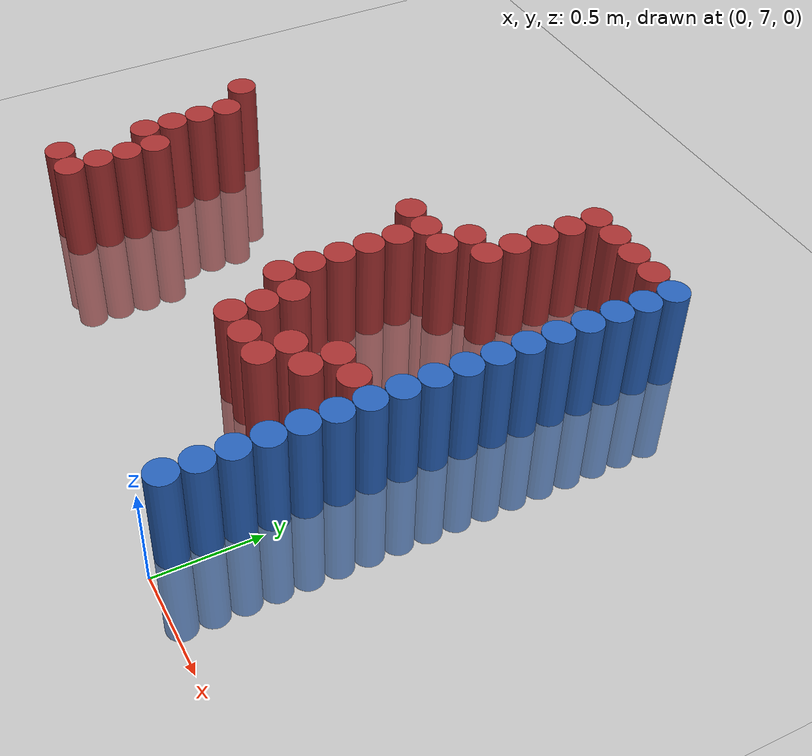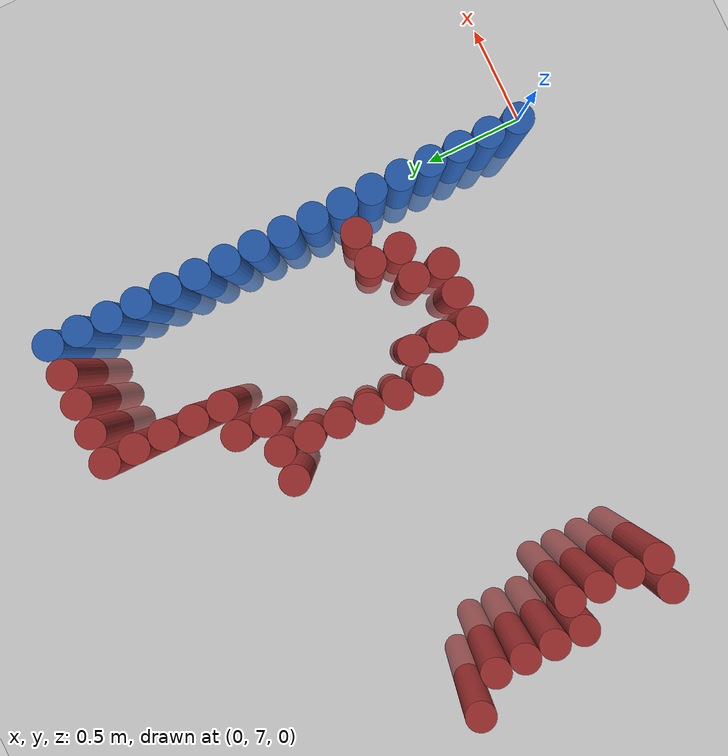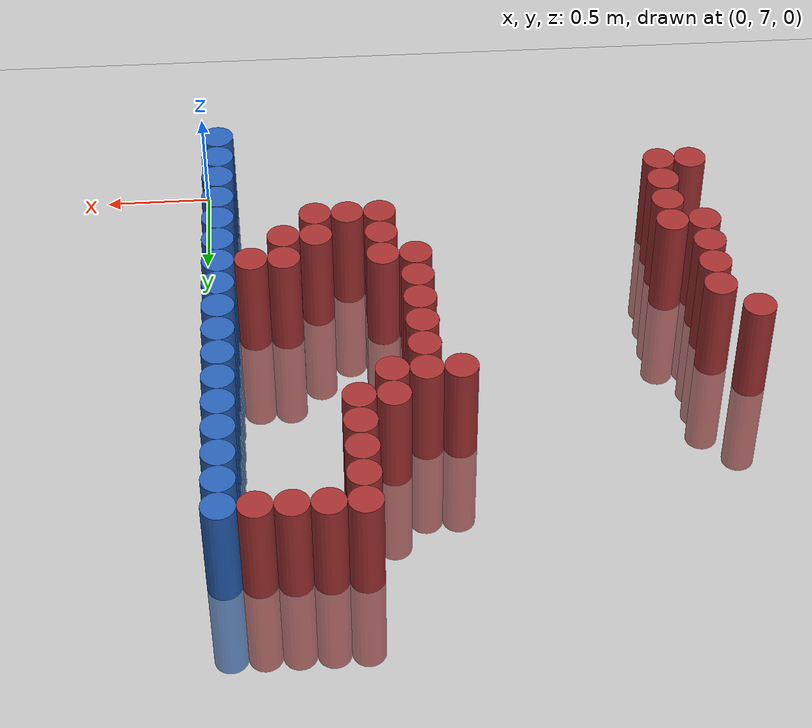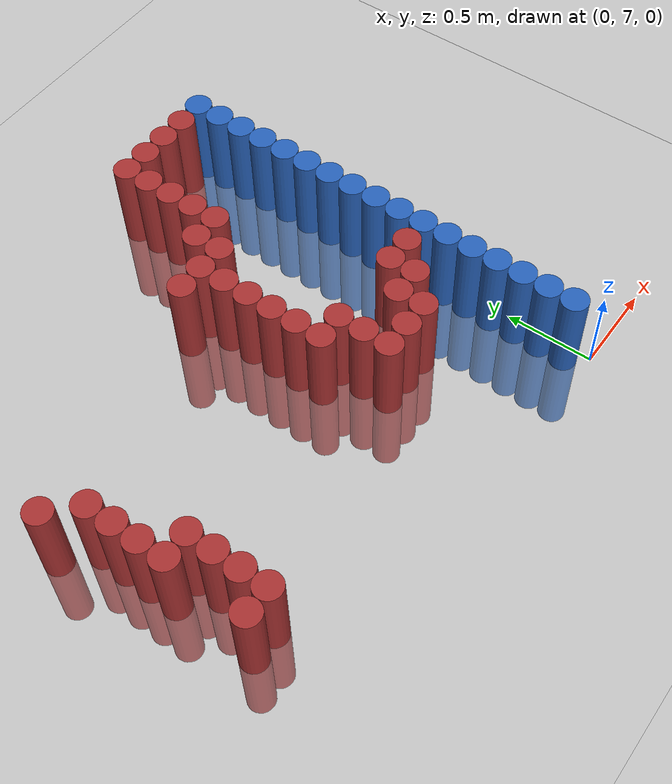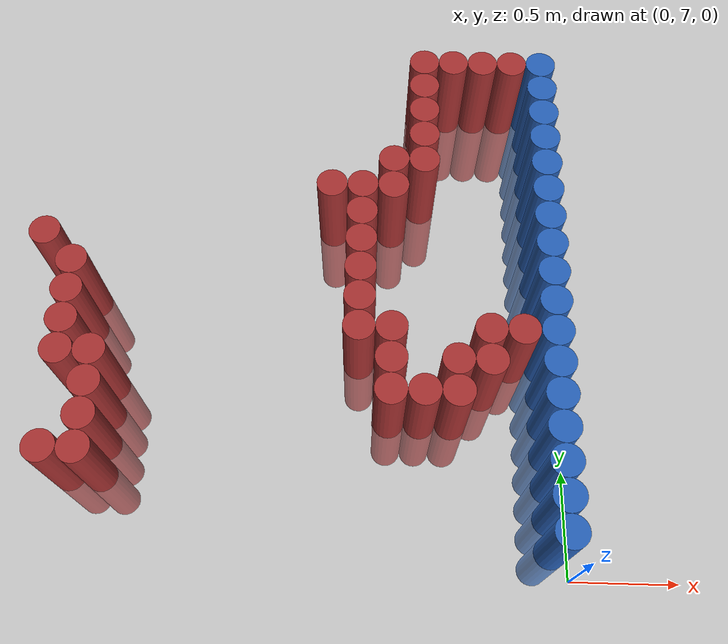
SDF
<sdf version="1.6">
 <world name="default">
  <model name="ground_plane">
   <static>1</static>
   <link name="link">
    <collision name="collision">
     <geometry><plane><normal>0 0 1</normal><size>100 100</size></plane></geometry>
     <surface><friction><ode><mu>100</mu><mu2>50</mu2></ode></friction></surface>
    </collision>
    <visual name="visual">
     <cast_shadows>0</cast_shadows>
     <geometry><plane><normal>0 0 1</normal><size>100 100</size></plane></geometry>
     <material>
      <script><uri>file://media/materials/scripts/gazebo.material</uri><name>Gazebo/Grey</name></script>
     </material>
    </visual>
   </link>
  </model>
  <model name="unit_cylinder_190">
   <static>1</static>
   <pose>-2.475000 8.475000 0.000000 0.000000 0.000000 0.000000</pose>
   <link name="link">
    <inertial>
     <mass>1</mass>
     <inertia><ixx>0.145833</ixx><ixy>0</ixy><ixz>0</ixz><iyy>0.145833</iyy><iyz>0</iyz><izz>0.125</izz></inertia>
    </inertial>
    <collision name="collision">
     <geometry><cylinder><radius>0.075000</radius><length>1</length></cylinder></geometry>
    </collision>
    <visual name="visual">
     <geometry><cylinder><radius>0.075000</radius><length>1</length></cylinder></geometry>
     <material>
      <ambient>0.648000 0.192000 0.192000 1</ambient>
      <diffuse>0.648000 0.192000 0.192000 1</diffuse>
     </material>
     <material>
      <script><name>Gazebo/Grey</name><uri>file://media/materials/scripts/gazebo.material</uri></script>
     </material>
    </visual>
   </link>
  </model>
  <model name="unit_cylinder_191">
   <static>1</static>
   <pose>-2.325000 7.425000 0.000000 0.000000 0.000000 0.000000</pose>
   <link name="link">
    <inertial>
     <mass>1</mass>
     <inertia><ixx>0.145833</ixx><ixy>0</ixy><ixz>0</ixz><iyy>0.145833</iyy><iyz>0</iyz><izz>0.125</izz></inertia>
    </inertial>
    <collision name="collision">
     <geometry><cylinder><radius>0.075000</radius><length>1</length></cylinder></geometry>
    </collision>
    <visual name="visual">
     <geometry><cylinder><radius>0.075000</radius><length>1</length></cylinder></geometry>
     <material>
      <ambient>0.648000 0.192000 0.192000 1</ambient>
      <diffuse>0.648000 0.192000 0.192000 1</diffuse>
     </material>
     <material>
      <script><name>Gazebo/Grey</name><uri>file://media/materials/scripts/gazebo.material</uri></script>
     </material>
    </visual>
   </link>
  </model>
  <model name="unit_cylinder_192">
   <static>1</static>
   <pose>-2.325000 7.875000 0.000000 0.000000 0.000000 0.000000</pose>
   <link name="link">
    <inertial>
     <mass>1</mass>
     <inertia><ixx>0.145833</ixx><ixy>0</ixy><ixz>0</ixz><iyy>0.145833</iyy><iyz>0</iyz><izz>0.125</izz></inertia>
    </inertial>
    <collision name="collision">
     <geometry><cylinder><radius>0.075000</radius><length>1</length></cylinder></geometry>
    </collision>
    <visual name="visual">
     <geometry><cylinder><radius>0.075000</radius><length>1</length></cylinder></geometry>
     <material>
      <ambient>0.648000 0.192000 0.192000 1</ambient>
      <diffuse>0.648000 0.192000 0.192000 1</diffuse>
     </material>
     <material>
      <script><name>Gazebo/Grey</name><uri>file://media/materials/scripts/gazebo.material</uri></script>
     </material>
    </visual>
   </link>
  </model>
  <model name="unit_cylinder_193">
   <static>1</static>
   <pose>-2.325000 8.025000 0.000000 0.000000 0.000000 0.000000</pose>
   <link name="link">
    <inertial>
     <mass>1</mass>
     <inertia><ixx>0.145833</ixx><ixy>0</ixy><ixz>0</ixz><iyy>0.145833</iyy><iyz>0</iyz><izz>0.125</izz></inertia>
    </inertial>
    <collision name="collision">
     <geometry><cylinder><radius>0.075000</radius><length>1</length></cylinder></geometry>
    </collision>
    <visual name="visual">
     <geometry><cylinder><radius>0.075000</radius><length>1</length></cylinder></geometry>
     <material>
      <ambient>0.648000 0.192000 0.192000 1</ambient>
      <diffuse>0.648000 0.192000 0.192000 1</diffuse>
     </material>
     <material>
      <script><name>Gazebo/Grey</name><uri>file://media/materials/scripts/gazebo.material</uri></script>
     </material>
    </visual>
   </link>
  </model>
  <model name="unit_cylinder_194">
   <static>1</static>
   <pose>-2.325000 8.175000 0.000000 0.000000 0.000000 0.000000</pose>
   <link name="link">
    <inertial>
     <mass>1</mass>
     <inertia><ixx>0.145833</ixx><ixy>0</ixy><ixz>0</ixz><iyy>0.145833</iyy><iyz>0</iyz><izz>0.125</izz></inertia>
    </inertial>
    <collision name="collision">
     <geometry><cylinder><radius>0.075000</radius><length>1</length></cylinder></geometry>
    </collision>
    <visual name="visual">
     <geometry><cylinder><radius>0.075000</radius><length>1</length></cylinder></geometry>
     <material>
      <ambient>0.648000 0.192000 0.192000 1</ambient>
      <diffuse>0.648000 0.192000 0.192000 1</diffuse>
     </material>
     <material>
      <script><name>Gazebo/Grey</name><uri>file://media/materials/scripts/gazebo.material</uri></script>
     </material>
    </visual>
   </link>
  </model>
  <model name="unit_cylinder_195">
   <static>1</static>
   <pose>-2.325000 8.325000 0.000000 0.000000 0.000000 0.000000</pose>
   <link name="link">
    <inertial>
     <mass>1</mass>
     <inertia><ixx>0.145833</ixx><ixy>0</ixy><ixz>0</ixz><iyy>0.145833</iyy><iyz>0</iyz><izz>0.125</izz></inertia>
    </inertial>
    <collision name="collision">
     <geometry><cylinder><radius>0.075000</radius><length>1</length></cylinder></geometry>
    </collision>
    <visual name="visual">
     <geometry><cylinder><radius>0.075000</radius><length>1</length></cylinder></geometry>
     <material>
      <ambient>0.648000 0.192000 0.192000 1</ambient>
      <diffuse>0.648000 0.192000 0.192000 1</diffuse>
     </material>
     <material>
      <script><name>Gazebo/Grey</name><uri>file://media/materials/scripts/gazebo.material</uri></script>
     </material>
    </visual>
   </link>
  </model>
  <model name="unit_cylinder_196">
   <static>1</static>
   <pose>-2.175000 7.425000 0.000000 0.000000 0.000000 0.000000</pose>
   <link name="link">
    <inertial>
     <mass>1</mass>
     <inertia><ixx>0.145833</ixx><ixy>0</ixy><ixz>0</ixz><iyy>0.145833</iyy><iyz>0</iyz><izz>0.125</izz></inertia>
    </inertial>
    <collision name="collision">
     <geometry><cylinder><radius>0.075000</radius><length>1</length></cylinder></geometry>
    </collision>
    <visual name="visual">
     <geometry><cylinder><radius>0.075000</radius><length>1</length></cylinder></geometry>
     <material>
      <ambient>0.648000 0.192000 0.192000 1</ambient>
      <diffuse>0.648000 0.192000 0.192000 1</diffuse>
     </material>
     <material>
      <script><name>Gazebo/Grey</name><uri>file://media/materials/scripts/gazebo.material</uri></script>
     </material>
    </visual>
   </link>
  </model>
  <model name="unit_cylinder_197">
   <static>1</static>
   <pose>-2.175000 7.575000 0.000000 0.000000 0.000000 0.000000</pose>
   <link name="link">
    <inertial>
     <mass>1</mass>
     <inertia><ixx>0.145833</ixx><ixy>0</ixy><ixz>0</ixz><iyy>0.145833</iyy><iyz>0</iyz><izz>0.125</izz></inertia>
    </inertial>
    <collision name="collision">
     <geometry><cylinder><radius>0.075000</radius><length>1</length></cylinder></geometry>
    </collision>
    <visual name="visual">
     <geometry><cylinder><radius>0.075000</radius><length>1</length></cylinder></geometry>
     <material>
      <ambient>0.648000 0.192000 0.192000 1</ambient>
      <diffuse>0.648000 0.192000 0.192000 1</diffuse>
     </material>
     <material>
      <script><name>Gazebo/Grey</name><uri>file://media/materials/scripts/gazebo.material</uri></script>
     </material>
    </visual>
   </link>
  </model>
  <model name="unit_cylinder_198">
   <static>1</static>
   <pose>-2.175000 7.725000 0.000000 0.000000 0.000000 0.000000</pose>
   <link name="link">
    <inertial>
     <mass>1</mass>
     <inertia><ixx>0.145833</ixx><ixy>0</ixy><ixz>0</ixz><iyy>0.145833</iyy><iyz>0</iyz><izz>0.125</izz></inertia>
    </inertial>
    <collision name="collision">
     <geometry><cylinder><radius>0.075000</radius><length>1</length></cylinder></geometry>
    </collision>
    <visual name="visual">
     <geometry><cylinder><radius>0.075000</radius><length>1</length></cylinder></geometry>
     <material>
      <ambient>0.648000 0.192000 0.192000 1</ambient>
      <diffuse>0.648000 0.192000 0.192000 1</diffuse>
     </material>
     <material>
      <script><name>Gazebo/Grey</name><uri>file://media/materials/scripts/gazebo.material</uri></script>
     </material>
    </visual>
   </link>
  </model>
  <model name="unit_cylinder_199">
   <static>1</static>
   <pose>-2.175000 7.875000 0.000000 0.000000 0.000000 0.000000</pose>
   <link name="link">
    <inertial>
     <mass>1</mass>
     <inertia><ixx>0.145833</ixx><ixy>0</ixy><ixz>0</ixz><iyy>0.145833</iyy><iyz>0</iyz><izz>0.125</izz></inertia>
    </inertial>
    <collision name="collision">
     <geometry><cylinder><radius>0.075000</radius><length>1</length></cylinder></geometry>
    </collision>
    <visual name="visual">
     <geometry><cylinder><radius>0.075000</radius><length>1</length></cylinder></geometry>
     <material>
      <ambient>0.648000 0.192000 0.192000 1</ambient>
      <diffuse>0.648000 0.192000 0.192000 1</diffuse>
     </material>
     <material>
      <script><name>Gazebo/Grey</name><uri>file://media/materials/scripts/gazebo.material</uri></script>
     </material>
    </visual>
   </link>
  </model>
  <model name="unit_cylinder_200">
   <static>1</static>
   <pose>-1.125000 8.775000 0.000000 0.000000 0.000000 0.000000</pose>
   <link name="link">
    <inertial>
     <mass>1</mass>
     <inertia><ixx>0.145833</ixx><ixy>0</ixy><ixz>0</ixz><iyy>0.145833</iyy><iyz>0</iyz><izz>0.125</izz></inertia>
    </inertial>
    <collision name="collision">
     <geometry><cylinder><radius>0.075000</radius><length>1</length></cylinder></geometry>
    </collision>
    <visual name="visual">
     <geometry><cylinder><radius>0.075000</radius><length>1</length></cylinder></geometry>
     <material>
      <ambient>0.648000 0.192000 0.192000 1</ambient>
      <diffuse>0.648000 0.192000 0.192000 1</diffuse>
     </material>
     <material>
      <script><name>Gazebo/Grey</name><uri>file://media/materials/scripts/gazebo.material</uri></script>
     </material>
    </visual>
   </link>
  </model>
  <model name="unit_cylinder_201">
   <static>1</static>
   <pose>-0.975000 8.025000 0.000000 0.000000 0.000000 0.000000</pose>
   <link name="link">
    <inertial>
     <mass>1</mass>
     <inertia><ixx>0.145833</ixx><ixy>0</ixy><ixz>0</ixz><iyy>0.145833</iyy><iyz>0</iyz><izz>0.125</izz></inertia>
    </inertial>
    <collision name="collision">
     <geometry><cylinder><radius>0.075000</radius><length>1</length></cylinder></geometry>
    </collision>
    <visual name="visual">
     <geometry><cylinder><radius>0.075000</radius><length>1</length></cylinder></geometry>
     <material>
      <ambient>0.648000 0.192000 0.192000 1</ambient>
      <diffuse>0.648000 0.192000 0.192000 1</diffuse>
     </material>
     <material>
      <script><name>Gazebo/Grey</name><uri>file://media/materials/scripts/gazebo.material</uri></script>
     </material>
    </visual>
   </link>
  </model>
  <model name="unit_cylinder_202">
   <static>1</static>
   <pose>-0.975000 8.175000 0.000000 0.000000 0.000000 0.000000</pose>
   <link name="link">
    <inertial>
     <mass>1</mass>
     <inertia><ixx>0.145833</ixx><ixy>0</ixy><ixz>0</ixz><iyy>0.145833</iyy><iyz>0</iyz><izz>0.125</izz></inertia>
    </inertial>
    <collision name="collision">
     <geometry><cylinder><radius>0.075000</radius><length>1</length></cylinder></geometry>
    </collision>
    <visual name="visual">
     <geometry><cylinder><radius>0.075000</radius><length>1</length></cylinder></geometry>
     <material>
      <ambient>0.648000 0.192000 0.192000 1</ambient>
      <diffuse>0.648000 0.192000 0.192000 1</diffuse>
     </material>
     <material>
      <script><name>Gazebo/Grey</name><uri>file://media/materials/scripts/gazebo.material</uri></script>
     </material>
    </visual>
   </link>
  </model>
  <model name="unit_cylinder_203">
   <static>1</static>
   <pose>-0.975000 8.325000 0.000000 0.000000 0.000000 0.000000</pose>
   <link name="link">
    <inertial>
     <mass>1</mass>
     <inertia><ixx>0.145833</ixx><ixy>0</ixy><ixz>0</ixz><iyy>0.145833</iyy><iyz>0</iyz><izz>0.125</izz></inertia>
    </inertial>
    <collision name="collision">
     <geometry><cylinder><radius>0.075000</radius><length>1</length></cylinder></geometry>
    </collision>
    <visual name="visual">
     <geometry><cylinder><radius>0.075000</radius><length>1</length></cylinder></geometry>
     <material>
      <ambient>0.648000 0.192000 0.192000 1</ambient>
      <diffuse>0.648000 0.192000 0.192000 1</diffuse>
     </material>
     <material>
      <script><name>Gazebo/Grey</name><uri>file://media/materials/scripts/gazebo.material</uri></script>
     </material>
    </visual>
   </link>
  </model>
  <model name="unit_cylinder_204">
   <static>1</static>
   <pose>-0.975000 8.475000 0.000000 0.000000 0.000000 0.000000</pose>
   <link name="link">
    <inertial>
     <mass>1</mass>
     <inertia><ixx>0.145833</ixx><ixy>0</ixy><ixz>0</ixz><iyy>0.145833</iyy><iyz>0</iyz><izz>0.125</izz></inertia>
    </inertial>
    <collision name="collision">
     <geometry><cylinder><radius>0.075000</radius><length>1</length></cylinder></geometry>
    </collision>
    <visual name="visual">
     <geometry><cylinder><radius>0.075000</radius><length>1</length></cylinder></geometry>
     <material>
      <ambient>0.648000 0.192000 0.192000 1</ambient>
      <diffuse>0.648000 0.192000 0.192000 1</diffuse>
     </material>
     <material>
      <script><name>Gazebo/Grey</name><uri>file://media/materials/scripts/gazebo.material</uri></script>
     </material>
    </visual>
   </link>
  </model>
  <model name="unit_cylinder_205">
   <static>1</static>
   <pose>-0.975000 8.625000 0.000000 0.000000 0.000000 0.000000</pose>
   <link name="link">
    <inertial>
     <mass>1</mass>
     <inertia><ixx>0.145833</ixx><ixy>0</ixy><ixz>0</ixz><iyy>0.145833</iyy><iyz>0</iyz><izz>0.125</izz></inertia>
    </inertial>
    <collision name="collision">
     <geometry><cylinder><radius>0.075000</radius><length>1</length></cylinder></geometry>
    </collision>
    <visual name="visual">
     <geometry><cylinder><radius>0.075000</radius><length>1</length></cylinder></geometry>
     <material>
      <ambient>0.648000 0.192000 0.192000 1</ambient>
      <diffuse>0.648000 0.192000 0.192000 1</diffuse>
     </material>
     <material>
      <script><name>Gazebo/Grey</name><uri>file://media/materials/scripts/gazebo.material</uri></script>
     </material>
    </visual>
   </link>
  </model>
  <model name="unit_cylinder_206">
   <static>1</static>
   <pose>-0.975000 8.775000 0.000000 0.000000 0.000000 0.000000</pose>
   <link name="link">
    <inertial>
     <mass>1</mass>
     <inertia><ixx>0.145833</ixx><ixy>0</ixy><ixz>0</ixz><iyy>0.145833</iyy><iyz>0</iyz><izz>0.125</izz></inertia>
    </inertial>
    <collision name="collision">
     <geometry><cylinder><radius>0.075000</radius><length>1</length></cylinder></geometry>
    </collision>
    <visual name="visual">
     <geometry><cylinder><radius>0.075000</radius><length>1</length></cylinder></geometry>
     <material>
      <ambient>0.648000 0.192000 0.192000 1</ambient>
      <diffuse>0.648000 0.192000 0.192000 1</diffuse>
     </material>
     <material>
      <script><name>Gazebo/Grey</name><uri>file://media/materials/scripts/gazebo.material</uri></script>
     </material>
    </visual>
   </link>
  </model>
  <model name="unit_cylinder_207">
   <static>1</static>
   <pose>-0.825000 7.725000 0.000000 0.000000 0.000000 0.000000</pose>
   <link name="link">
    <inertial>
     <mass>1</mass>
     <inertia><ixx>0.145833</ixx><ixy>0</ixy><ixz>0</ixz><iyy>0.145833</iyy><iyz>0</iyz><izz>0.125</izz></inertia>
    </inertial>
    <collision name="collision">
     <geometry><cylinder><radius>0.075000</radius><length>1</length></cylinder></geometry>
    </collision>
    <visual name="visual">
     <geometry><cylinder><radius>0.075000</radius><length>1</length></cylinder></geometry>
     <material>
      <ambient>0.648000 0.192000 0.192000 1</ambient>
      <diffuse>0.648000 0.192000 0.192000 1</diffuse>
     </material>
     <material>
      <script><name>Gazebo/Grey</name><uri>file://media/materials/scripts/gazebo.material</uri></script>
     </material>
    </visual>
   </link>
  </model>
  <model name="unit_cylinder_208">
   <static>1</static>
   <pose>-0.825000 7.875000 0.000000 0.000000 0.000000 0.000000</pose>
   <link name="link">
    <inertial>
     <mass>1</mass>
     <inertia><ixx>0.145833</ixx><ixy>0</ixy><ixz>0</ixz><iyy>0.145833</iyy><iyz>0</iyz><izz>0.125</izz></inertia>
    </inertial>
    <collision name="collision">
     <geometry><cylinder><radius>0.075000</radius><length>1</length></cylinder></geometry>
    </collision>
    <visual name="visual">
     <geometry><cylinder><radius>0.075000</radius><length>1</length></cylinder></geometry>
     <material>
      <ambient>0.648000 0.192000 0.192000 1</ambient>
      <diffuse>0.648000 0.192000 0.192000 1</diffuse>
     </material>
     <material>
      <script><name>Gazebo/Grey</name><uri>file://media/materials/scripts/gazebo.material</uri></script>
     </material>
    </visual>
   </link>
  </model>
  <model name="unit_cylinder_209">
   <static>1</static>
   <pose>-0.825000 8.025000 0.000000 0.000000 0.000000 0.000000</pose>
   <link name="link">
    <inertial>
     <mass>1</mass>
     <inertia><ixx>0.145833</ixx><ixy>0</ixy><ixz>0</ixz><iyy>0.145833</iyy><iyz>0</iyz><izz>0.125</izz></inertia>
    </inertial>
    <collision name="collision">
     <geometry><cylinder><radius>0.075000</radius><length>1</length></cylinder></geometry>
    </collision>
    <visual name="visual">
     <geometry><cylinder><radius>0.075000</radius><length>1</length></cylinder></geometry>
     <material>
      <ambient>0.648000 0.192000 0.192000 1</ambient>
      <diffuse>0.648000 0.192000 0.192000 1</diffuse>
     </material>
     <material>
      <script><name>Gazebo/Grey</name><uri>file://media/materials/scripts/gazebo.material</uri></script>
     </material>
    </visual>
   </link>
  </model>
  <model name="unit_cylinder_210">
   <static>1</static>
   <pose>-0.825000 8.775000 0.000000 0.000000 0.000000 0.000000</pose>
   <link name="link">
    <inertial>
     <mass>1</mass>
     <inertia><ixx>0.145833</ixx><ixy>0</ixy><ixz>0</ixz><iyy>0.145833</iyy><iyz>0</iyz><izz>0.125</izz></inertia>
    </inertial>
    <collision name="collision">
     <geometry><cylinder><radius>0.075000</radius><length>1</length></cylinder></geometry>
    </collision>
    <visual name="visual">
     <geometry><cylinder><radius>0.075000</radius><length>1</length></cylinder></geometry>
     <material>
      <ambient>0.648000 0.192000 0.192000 1</ambient>
      <diffuse>0.648000 0.192000 0.192000 1</diffuse>
     </material>
     <material>
      <script><name>Gazebo/Grey</name><uri>file://media/materials/scripts/gazebo.material</uri></script>
     </material>
    </visual>
   </link>
  </model>
  <model name="unit_cylinder_211">
   <static>1</static>
   <pose>-0.825000 8.925000 0.000000 0.000000 0.000000 0.000000</pose>
   <link name="link">
    <inertial>
     <mass>1</mass>
     <inertia><ixx>0.145833</ixx><ixy>0</ixy><ixz>0</ixz><iyy>0.145833</iyy><iyz>0</iyz><izz>0.125</izz></inertia>
    </inertial>
    <collision name="collision">
     <geometry><cylinder><radius>0.075000</radius><length>1</length></cylinder></geometry>
    </collision>
    <visual name="visual">
     <geometry><cylinder><radius>0.075000</radius><length>1</length></cylinder></geometry>
     <material>
      <ambient>0.648000 0.192000 0.192000 1</ambient>
      <diffuse>0.648000 0.192000 0.192000 1</diffuse>
     </material>
     <material>
      <script><name>Gazebo/Grey</name><uri>file://media/materials/scripts/gazebo.material</uri></script>
     </material>
    </visual>
   </link>
  </model>
  <model name="unit_cylinder_212">
   <static>1</static>
   <pose>-0.675000 7.725000 0.000000 0.000000 0.000000 0.000000</pose>
   <link name="link">
    <inertial>
     <mass>1</mass>
     <inertia><ixx>0.145833</ixx><ixy>0</ixy><ixz>0</ixz><iyy>0.145833</iyy><iyz>0</iyz><izz>0.125</izz></inertia>
    </inertial>
    <collision name="collision">
     <geometry><cylinder><radius>0.075000</radius><length>1</length></cylinder></geometry>
    </collision>
    <visual name="visual">
     <geometry><cylinder><radius>0.075000</radius><length>1</length></cylinder></geometry>
     <material>
      <ambient>0.648000 0.192000 0.192000 1</ambient>
      <diffuse>0.648000 0.192000 0.192000 1</diffuse>
     </material>
     <material>
      <script><name>Gazebo/Grey</name><uri>file://media/materials/scripts/gazebo.material</uri></script>
     </material>
    </visual>
   </link>
  </model>
  <model name="unit_cylinder_213">
   <static>1</static>
   <pose>-0.675000 8.925000 0.000000 0.000000 0.000000 0.000000</pose>
   <link name="link">
    <inertial>
     <mass>1</mass>
     <inertia><ixx>0.145833</ixx><ixy>0</ixy><ixz>0</ixz><iyy>0.145833</iyy><iyz>0</iyz><izz>0.125</izz></inertia>
    </inertial>
    <collision name="collision">
     <geometry><cylinder><radius>0.075000</radius><length>1</length></cylinder></geometry>
    </collision>
    <visual name="visual">
     <geometry><cylinder><radius>0.075000</radius><length>1</length></cylinder></geometry>
     <material>
      <ambient>0.648000 0.192000 0.192000 1</ambient>
      <diffuse>0.648000 0.192000 0.192000 1</diffuse>
     </material>
     <material>
      <script><name>Gazebo/Grey</name><uri>file://media/materials/scripts/gazebo.material</uri></script>
     </material>
    </visual>
   </link>
  </model>
  <model name="unit_cylinder_214">
   <static>1</static>
   <pose>-0.675000 9.075000 0.000000 0.000000 0.000000 0.000000</pose>
   <link name="link">
    <inertial>
     <mass>1</mass>
     <inertia><ixx>0.145833</ixx><ixy>0</ixy><ixz>0</ixz><iyy>0.145833</iyy><iyz>0</iyz><izz>0.125</izz></inertia>
    </inertial>
    <collision name="collision">
     <geometry><cylinder><radius>0.075000</radius><length>1</length></cylinder></geometry>
    </collision>
    <visual name="visual">
     <geometry><cylinder><radius>0.075000</radius><length>1</length></cylinder></geometry>
     <material>
      <ambient>0.648000 0.192000 0.192000 1</ambient>
      <diffuse>0.648000 0.192000 0.192000 1</diffuse>
     </material>
     <material>
      <script><name>Gazebo/Grey</name><uri>file://media/materials/scripts/gazebo.material</uri></script>
     </material>
    </visual>
   </link>
  </model>
  <model name="unit_cylinder_215">
   <static>1</static>
   <pose>-0.675000 9.225000 0.000000 0.000000 0.000000 0.000000</pose>
   <link name="link">
    <inertial>
     <mass>1</mass>
     <inertia><ixx>0.145833</ixx><ixy>0</ixy><ixz>0</ixz><iyy>0.145833</iyy><iyz>0</iyz><izz>0.125</izz></inertia>
    </inertial>
    <collision name="collision">
     <geometry><cylinder><radius>0.075000</radius><length>1</length></cylinder></geometry>
    </collision>
    <visual name="visual">
     <geometry><cylinder><radius>0.075000</radius><length>1</length></cylinder></geometry>
     <material>
      <ambient>0.648000 0.192000 0.192000 1</ambient>
      <diffuse>0.648000 0.192000 0.192000 1</diffuse>
     </material>
     <material>
      <script><name>Gazebo/Grey</name><uri>file://media/materials/scripts/gazebo.material</uri></script>
     </material>
    </visual>
   </link>
  </model>
  <model name="unit_cylinder_216">
   <static>1</static>
   <pose>-0.675000 9.375000 0.000000 0.000000 0.000000 0.000000</pose>
   <link name="link">
    <inertial>
     <mass>1</mass>
     <inertia><ixx>0.145833</ixx><ixy>0</ixy><ixz>0</ixz><iyy>0.145833</iyy><iyz>0</iyz><izz>0.125</izz></inertia>
    </inertial>
    <collision name="collision">
     <geometry><cylinder><radius>0.075000</radius><length>1</length></cylinder></geometry>
    </collision>
    <visual name="visual">
     <geometry><cylinder><radius>0.075000</radius><length>1</length></cylinder></geometry>
     <material>
      <ambient>0.648000 0.192000 0.192000 1</ambient>
      <diffuse>0.648000 0.192000 0.192000 1</diffuse>
     </material>
     <material>
      <script><name>Gazebo/Grey</name><uri>file://media/materials/scripts/gazebo.material</uri></script>
     </material>
    </visual>
   </link>
  </model>
  <model name="unit_cylinder_217">
   <static>1</static>
   <pose>-0.675000 9.525000 0.000000 0.000000 0.000000 0.000000</pose>
   <link name="link">
    <inertial>
     <mass>1</mass>
     <inertia><ixx>0.145833</ixx><ixy>0</ixy><ixz>0</ixz><iyy>0.145833</iyy><iyz>0</iyz><izz>0.125</izz></inertia>
    </inertial>
    <collision name="collision">
     <geometry><cylinder><radius>0.075000</radius><length>1</length></cylinder></geometry>
    </collision>
    <visual name="visual">
     <geometry><cylinder><radius>0.075000</radius><length>1</length></cylinder></geometry>
     <material>
      <ambient>0.648000 0.192000 0.192000 1</ambient>
      <diffuse>0.648000 0.192000 0.192000 1</diffuse>
     </material>
     <material>
      <script><name>Gazebo/Grey</name><uri>file://media/materials/scripts/gazebo.material</uri></script>
     </material>
    </visual>
   </link>
  </model>
  <model name="unit_cylinder_218">
   <static>1</static>
   <pose>-0.525000 7.725000 0.000000 0.000000 0.000000 0.000000</pose>
   <link name="link">
    <inertial>
     <mass>1</mass>
     <inertia><ixx>0.145833</ixx><ixy>0</ixy><ixz>0</ixz><iyy>0.145833</iyy><iyz>0</iyz><izz>0.125</izz></inertia>
    </inertial>
    <collision name="collision">
     <geometry><cylinder><radius>0.075000</radius><length>1</length></cylinder></geometry>
    </collision>
    <visual name="visual">
     <geometry><cylinder><radius>0.075000</radius><length>1</length></cylinder></geometry>
     <material>
      <ambient>0.648000 0.192000 0.192000 1</ambient>
      <diffuse>0.648000 0.192000 0.192000 1</diffuse>
     </material>
     <material>
      <script><name>Gazebo/Grey</name><uri>file://media/materials/scripts/gazebo.material</uri></script>
     </material>
    </visual>
   </link>
  </model>
  <model name="unit_cylinder_219">
   <static>1</static>
   <pose>-0.525000 7.875000 0.000000 0.000000 0.000000 0.000000</pose>
   <link name="link">
    <inertial>
     <mass>1</mass>
     <inertia><ixx>0.145833</ixx><ixy>0</ixy><ixz>0</ixz><iyy>0.145833</iyy><iyz>0</iyz><izz>0.125</izz></inertia>
    </inertial>
    <collision name="collision">
     <geometry><cylinder><radius>0.075000</radius><length>1</length></cylinder></geometry>
    </collision>
    <visual name="visual">
     <geometry><cylinder><radius>0.075000</radius><length>1</length></cylinder></geometry>
     <material>
      <ambient>0.648000 0.192000 0.192000 1</ambient>
      <diffuse>0.648000 0.192000 0.192000 1</diffuse>
     </material>
     <material>
      <script><name>Gazebo/Grey</name><uri>file://media/materials/scripts/gazebo.material</uri></script>
     </material>
    </visual>
   </link>
  </model>
  <model name="unit_cylinder_220">
   <static>1</static>
   <pose>-0.525000 9.525000 0.000000 0.000000 0.000000 0.000000</pose>
   <link name="link">
    <inertial>
     <mass>1</mass>
     <inertia><ixx>0.145833</ixx><ixy>0</ixy><ixz>0</ixz><iyy>0.145833</iyy><iyz>0</iyz><izz>0.125</izz></inertia>
    </inertial>
    <collision name="collision">
     <geometry><cylinder><radius>0.075000</radius><length>1</length></cylinder></geometry>
    </collision>
    <visual name="visual">
     <geometry><cylinder><radius>0.075000</radius><length>1</length></cylinder></geometry>
     <material>
      <ambient>0.648000 0.192000 0.192000 1</ambient>
      <diffuse>0.648000 0.192000 0.192000 1</diffuse>
     </material>
     <material>
      <script><name>Gazebo/Grey</name><uri>file://media/materials/scripts/gazebo.material</uri></script>
     </material>
    </visual>
   </link>
  </model>
  <model name="unit_cylinder_225">
   <static>1</static>
   <pose>-0.375000 7.875000 0.000000 0.000000 0.000000 0.000000</pose>
   <link name="link">
    <inertial>
     <mass>1</mass>
     <inertia><ixx>0.145833</ixx><ixy>0</ixy><ixz>0</ixz><iyy>0.145833</iyy><iyz>0</iyz><izz>0.125</izz></inertia>
    </inertial>
    <collision name="collision">
     <geometry><cylinder><radius>0.075000</radius><length>1</length></cylinder></geometry>
    </collision>
    <visual name="visual">
     <geometry><cylinder><radius>0.075000</radius><length>1</length></cylinder></geometry>
     <material>
      <ambient>0.648000 0.192000 0.192000 1</ambient>
      <diffuse>0.648000 0.192000 0.192000 1</diffuse>
     </material>
     <material>
      <script><name>Gazebo/Grey</name><uri>file://media/materials/scripts/gazebo.material</uri></script>
     </material>
    </visual>
   </link>
  </model>
  <model name="unit_cylinder_226">
   <static>1</static>
   <pose>-0.375000 8.025000 0.000000 0.000000 0.000000 0.000000</pose>
   <link name="link">
    <inertial>
     <mass>1</mass>
     <inertia><ixx>0.145833</ixx><ixy>0</ixy><ixz>0</ixz><iyy>0.145833</iyy><iyz>0</iyz><izz>0.125</izz></inertia>
    </inertial>
    <collision name="collision">
     <geometry><cylinder><radius>0.075000</radius><length>1</length></cylinder></geometry>
    </collision>
    <visual name="visual">
     <geometry><cylinder><radius>0.075000</radius><length>1</length></cylinder></geometry>
     <material>
      <ambient>0.648000 0.192000 0.192000 1</ambient>
      <diffuse>0.648000 0.192000 0.192000 1</diffuse>
     </material>
     <material>
      <script><name>Gazebo/Grey</name><uri>file://media/materials/scripts/gazebo.material</uri></script>
     </material>
    </visual>
   </link>
  </model>
  <model name="unit_cylinder_227">
   <static>1</static>
   <pose>-0.375000 9.525000 0.000000 0.000000 0.000000 0.000000</pose>
   <link name="link">
    <inertial>
     <mass>1</mass>
     <inertia><ixx>0.145833</ixx><ixy>0</ixy><ixz>0</ixz><iyy>0.145833</iyy><iyz>0</iyz><izz>0.125</izz></inertia>
    </inertial>
    <collision name="collision">
     <geometry><cylinder><radius>0.075000</radius><length>1</length></cylinder></geometry>
    </collision>
    <visual name="visual">
     <geometry><cylinder><radius>0.075000</radius><length>1</length></cylinder></geometry>
     <material>
      <ambient>0.648000 0.192000 0.192000 1</ambient>
      <diffuse>0.648000 0.192000 0.192000 1</diffuse>
     </material>
     <material>
      <script><name>Gazebo/Grey</name><uri>file://media/materials/scripts/gazebo.material</uri></script>
     </material>
    </visual>
   </link>
  </model>
  <model name="unit_cylinder_233">
   <static>1</static>
   <pose>-0.225000 8.025000 0.000000 0.000000 0.000000 0.000000</pose>
   <link name="link">
    <inertial>
     <mass>1</mass>
     <inertia><ixx>0.145833</ixx><ixy>0</ixy><ixz>0</ixz><iyy>0.145833</iyy><iyz>0</iyz><izz>0.125</izz></inertia>
    </inertial>
    <collision name="collision">
     <geometry><cylinder><radius>0.075000</radius><length>1</length></cylinder></geometry>
    </collision>
    <visual name="visual">
     <geometry><cylinder><radius>0.075000</radius><length>1</length></cylinder></geometry>
     <material>
      <ambient>0.648000 0.192000 0.192000 1</ambient>
      <diffuse>0.648000 0.192000 0.192000 1</diffuse>
     </material>
     <material>
      <script><name>Gazebo/Grey</name><uri>file://media/materials/scripts/gazebo.material</uri></script>
     </material>
    </visual>
   </link>
  </model>
  <model name="unit_cylinder_234">
   <static>1</static>
   <pose>-0.225000 9.525000 0.000000 0.000000 0.000000 0.000000</pose>
   <link name="link">
    <inertial>
     <mass>1</mass>
     <inertia><ixx>0.145833</ixx><ixy>0</ixy><ixz>0</ixz><iyy>0.145833</iyy><iyz>0</iyz><izz>0.125</izz></inertia>
    </inertial>
    <collision name="collision">
     <geometry><cylinder><radius>0.075000</radius><length>1</length></cylinder></geometry>
    </collision>
    <visual name="visual">
     <geometry><cylinder><radius>0.075000</radius><length>1</length></cylinder></geometry>
     <material>
      <ambient>0.648000 0.192000 0.192000 1</ambient>
      <diffuse>0.648000 0.192000 0.192000 1</diffuse>
     </material>
     <material>
      <script><name>Gazebo/Grey</name><uri>file://media/materials/scripts/gazebo.material</uri></script>
     </material>
    </visual>
   </link>
  </model>
  <model name="unit_cylinder_248">
   <static>1</static>
   <pose>-0.075000 7.125000 0.000000 0.000000 0.000000 0.000000</pose>
   <link name="link">
    <inertial>
     <mass>1</mass>
     <inertia><ixx>0.145833</ixx><ixy>0</ixy><ixz>0</ixz><iyy>0.145833</iyy><iyz>0</iyz><izz>0.125</izz></inertia>
    </inertial>
    <collision name="collision">
     <geometry><cylinder><radius>0.075000</radius><length>1</length></cylinder></geometry>
    </collision>
    <visual name="visual">
     <geometry><cylinder><radius>0.075000</radius><length>1</length></cylinder></geometry>
     <material>
      <ambient>0.152000 0.379000 0.720000 1</ambient>
      <diffuse>0.152000 0.379000 0.720000 1</diffuse>
     </material>
     <material>
      <script><name>Gazebo/Grey</name><uri>file://media/materials/scripts/gazebo.material</uri></script>
     </material>
    </visual>
   </link>
  </model>
  <model name="unit_cylinder_249">
   <static>1</static>
   <pose>-0.075000 7.275000 0.000000 0.000000 0.000000 0.000000</pose>
   <link name="link">
    <inertial>
     <mass>1</mass>
     <inertia><ixx>0.145833</ixx><ixy>0</ixy><ixz>0</ixz><iyy>0.145833</iyy><iyz>0</iyz><izz>0.125</izz></inertia>
    </inertial>
    <collision name="collision">
     <geometry><cylinder><radius>0.075000</radius><length>1</length></cylinder></geometry>
    </collision>
    <visual name="visual">
     <geometry><cylinder><radius>0.075000</radius><length>1</length></cylinder></geometry>
     <material>
      <ambient>0.152000 0.379000 0.720000 1</ambient>
      <diffuse>0.152000 0.379000 0.720000 1</diffuse>
     </material>
     <material>
      <script><name>Gazebo/Grey</name><uri>file://media/materials/scripts/gazebo.material</uri></script>
     </material>
    </visual>
   </link>
  </model>
  <model name="unit_cylinder_250">
   <static>1</static>
   <pose>-0.075000 7.425000 0.000000 0.000000 0.000000 0.000000</pose>
   <link name="link">
    <inertial>
     <mass>1</mass>
     <inertia><ixx>0.145833</ixx><ixy>0</ixy><ixz>0</ixz><iyy>0.145833</iyy><iyz>0</iyz><izz>0.125</izz></inertia>
    </inertial>
    <collision name="collision">
     <geometry><cylinder><radius>0.075000</radius><length>1</length></cylinder></geometry>
    </collision>
    <visual name="visual">
     <geometry><cylinder><radius>0.075000</radius><length>1</length></cylinder></geometry>
     <material>
      <ambient>0.152000 0.379000 0.720000 1</ambient>
      <diffuse>0.152000 0.379000 0.720000 1</diffuse>
     </material>
     <material>
      <script><name>Gazebo/Grey</name><uri>file://media/materials/scripts/gazebo.material</uri></script>
     </material>
    </visual>
   </link>
  </model>
  <model name="unit_cylinder_251">
   <static>1</static>
   <pose>-0.075000 7.575000 0.000000 0.000000 0.000000 0.000000</pose>
   <link name="link">
    <inertial>
     <mass>1</mass>
     <inertia><ixx>0.145833</ixx><ixy>0</ixy><ixz>0</ixz><iyy>0.145833</iyy><iyz>0</iyz><izz>0.125</izz></inertia>
    </inertial>
    <collision name="collision">
     <geometry><cylinder><radius>0.075000</radius><length>1</length></cylinder></geometry>
    </collision>
    <visual name="visual">
     <geometry><cylinder><radius>0.075000</radius><length>1</length></cylinder></geometry>
     <material>
      <ambient>0.152000 0.379000 0.720000 1</ambient>
      <diffuse>0.152000 0.379000 0.720000 1</diffuse>
     </material>
     <material>
      <script><name>Gazebo/Grey</name><uri>file://media/materials/scripts/gazebo.material</uri></script>
     </material>
    </visual>
   </link>
  </model>
  <model name="unit_cylinder_252">
   <static>1</static>
   <pose>-0.075000 7.725000 0.000000 0.000000 0.000000 0.000000</pose>
   <link name="link">
    <inertial>
     <mass>1</mass>
     <inertia><ixx>0.145833</ixx><ixy>0</ixy><ixz>0</ixz><iyy>0.145833</iyy><iyz>0</iyz><izz>0.125</izz></inertia>
    </inertial>
    <collision name="collision">
     <geometry><cylinder><radius>0.075000</radius><length>1</length></cylinder></geometry>
    </collision>
    <visual name="visual">
     <geometry><cylinder><radius>0.075000</radius><length>1</length></cylinder></geometry>
     <material>
      <ambient>0.152000 0.379000 0.720000 1</ambient>
      <diffuse>0.152000 0.379000 0.720000 1</diffuse>
     </material>
     <material>
      <script><name>Gazebo/Grey</name><uri>file://media/materials/scripts/gazebo.material</uri></script>
     </material>
    </visual>
   </link>
  </model>
  <model name="unit_cylinder_253">
   <static>1</static>
   <pose>-0.075000 7.875000 0.000000 0.000000 0.000000 0.000000</pose>
   <link name="link">
    <inertial>
     <mass>1</mass>
     <inertia><ixx>0.145833</ixx><ixy>0</ixy><ixz>0</ixz><iyy>0.145833</iyy><iyz>0</iyz><izz>0.125</izz></inertia>
    </inertial>
    <collision name="collision">
     <geometry><cylinder><radius>0.075000</radius><length>1</length></cylinder></geometry>
    </collision>
    <visual name="visual">
     <geometry><cylinder><radius>0.075000</radius><length>1</length></cylinder></geometry>
     <material>
      <ambient>0.152000 0.379000 0.720000 1</ambient>
      <diffuse>0.152000 0.379000 0.720000 1</diffuse>
     </material>
     <material>
      <script><name>Gazebo/Grey</name><uri>file://media/materials/scripts/gazebo.material</uri></script>
     </material>
    </visual>
   </link>
  </model>
  <model name="unit_cylinder_254">
   <static>1</static>
   <pose>-0.075000 8.025000 0.000000 0.000000 0.000000 0.000000</pose>
   <link name="link">
    <inertial>
     <mass>1</mass>
     <inertia><ixx>0.145833</ixx><ixy>0</ixy><ixz>0</ixz><iyy>0.145833</iyy><iyz>0</iyz><izz>0.125</izz></inertia>
    </inertial>
    <collision name="collision">
     <geometry><cylinder><radius>0.075000</radius><length>1</length></cylinder></geometry>
    </collision>
    <visual name="visual">
     <geometry><cylinder><radius>0.075000</radius><length>1</length></cylinder></geometry>
     <material>
      <ambient>0.152000 0.379000 0.720000 1</ambient>
      <diffuse>0.152000 0.379000 0.720000 1</diffuse>
     </material>
     <material>
      <script><name>Gazebo/Grey</name><uri>file://media/materials/scripts/gazebo.material</uri></script>
     </material>
    </visual>
   </link>
  </model>
  <model name="unit_cylinder_255">
   <static>1</static>
   <pose>-0.075000 8.175000 0.000000 0.000000 0.000000 0.000000</pose>
   <link name="link">
    <inertial>
     <mass>1</mass>
     <inertia><ixx>0.145833</ixx><ixy>0</ixy><ixz>0</ixz><iyy>0.145833</iyy><iyz>0</iyz><izz>0.125</izz></inertia>
    </inertial>
    <collision name="collision">
     <geometry><cylinder><radius>0.075000</radius><length>1</length></cylinder></geometry>
    </collision>
    <visual name="visual">
     <geometry><cylinder><radius>0.075000</radius><length>1</length></cylinder></geometry>
     <material>
      <ambient>0.152000 0.379000 0.720000 1</ambient>
      <diffuse>0.152000 0.379000 0.720000 1</diffuse>
     </material>
     <material>
      <script><name>Gazebo/Grey</name><uri>file://media/materials/scripts/gazebo.material</uri></script>
     </material>
    </visual>
   </link>
  </model>
  <model name="unit_cylinder_256">
   <static>1</static>
   <pose>-0.075000 8.325000 0.000000 0.000000 0.000000 0.000000</pose>
   <link name="link">
    <inertial>
     <mass>1</mass>
     <inertia><ixx>0.145833</ixx><ixy>0</ixy><ixz>0</ixz><iyy>0.145833</iyy><iyz>0</iyz><izz>0.125</izz></inertia>
    </inertial>
    <collision name="collision">
     <geometry><cylinder><radius>0.075000</radius><length>1</length></cylinder></geometry>
    </collision>
    <visual name="visual">
     <geometry><cylinder><radius>0.075000</radius><length>1</length></cylinder></geometry>
     <material>
      <ambient>0.152000 0.379000 0.720000 1</ambient>
      <diffuse>0.152000 0.379000 0.720000 1</diffuse>
     </material>
     <material>
      <script><name>Gazebo/Grey</name><uri>file://media/materials/scripts/gazebo.material</uri></script>
     </material>
    </visual>
   </link>
  </model>
  <model name="unit_cylinder_257">
   <static>1</static>
   <pose>-0.075000 8.475000 0.000000 0.000000 0.000000 0.000000</pose>
   <link name="link">
    <inertial>
     <mass>1</mass>
     <inertia><ixx>0.145833</ixx><ixy>0</ixy><ixz>0</ixz><iyy>0.145833</iyy><iyz>0</iyz><izz>0.125</izz></inertia>
    </inertial>
    <collision name="collision">
     <geometry><cylinder><radius>0.075000</radius><length>1</length></cylinder></geometry>
    </collision>
    <visual name="visual">
     <geometry><cylinder><radius>0.075000</radius><length>1</length></cylinder></geometry>
     <material>
      <ambient>0.152000 0.379000 0.720000 1</ambient>
      <diffuse>0.152000 0.379000 0.720000 1</diffuse>
     </material>
     <material>
      <script><name>Gazebo/Grey</name><uri>file://media/materials/scripts/gazebo.material</uri></script>
     </material>
    </visual>
   </link>
  </model>
  <model name="unit_cylinder_258">
   <static>1</static>
   <pose>-0.075000 8.625000 0.000000 0.000000 0.000000 0.000000</pose>
   <link name="link">
    <inertial>
     <mass>1</mass>
     <inertia><ixx>0.145833</ixx><ixy>0</ixy><ixz>0</ixz><iyy>0.145833</iyy><iyz>0</iyz><izz>0.125</izz></inertia>
    </inertial>
    <collision name="collision">
     <geometry><cylinder><radius>0.075000</radius><length>1</length></cylinder></geometry>
    </collision>
    <visual name="visual">
     <geometry><cylinder><radius>0.075000</radius><length>1</length></cylinder></geometry>
     <material>
      <ambient>0.152000 0.379000 0.720000 1</ambient>
      <diffuse>0.152000 0.379000 0.720000 1</diffuse>
     </material>
     <material>
      <script><name>Gazebo/Grey</name><uri>file://media/materials/scripts/gazebo.material</uri></script>
     </material>
    </visual>
   </link>
  </model>
  <model name="unit_cylinder_259">
   <static>1</static>
   <pose>-0.075000 8.775000 0.000000 0.000000 0.000000 0.000000</pose>
   <link name="link">
    <inertial>
     <mass>1</mass>
     <inertia><ixx>0.145833</ixx><ixy>0</ixy><ixz>0</ixz><iyy>0.145833</iyy><iyz>0</iyz><izz>0.125</izz></inertia>
    </inertial>
    <collision name="collision">
     <geometry><cylinder><radius>0.075000</radius><length>1</length></cylinder></geometry>
    </collision>
    <visual name="visual">
     <geometry><cylinder><radius>0.075000</radius><length>1</length></cylinder></geometry>
     <material>
      <ambient>0.152000 0.379000 0.720000 1</ambient>
      <diffuse>0.152000 0.379000 0.720000 1</diffuse>
     </material>
     <material>
      <script><name>Gazebo/Grey</name><uri>file://media/materials/scripts/gazebo.material</uri></script>
     </material>
    </visual>
   </link>
  </model>
  <model name="unit_cylinder_260">
   <static>1</static>
   <pose>-0.075000 8.925000 0.000000 0.000000 0.000000 0.000000</pose>
   <link name="link">
    <inertial>
     <mass>1</mass>
     <inertia><ixx>0.145833</ixx><ixy>0</ixy><ixz>0</ixz><iyy>0.145833</iyy><iyz>0</iyz><izz>0.125</izz></inertia>
    </inertial>
    <collision name="collision">
     <geometry><cylinder><radius>0.075000</radius><length>1</length></cylinder></geometry>
    </collision>
    <visual name="visual">
     <geometry><cylinder><radius>0.075000</radius><length>1</length></cylinder></geometry>
     <material>
      <ambient>0.152000 0.379000 0.720000 1</ambient>
      <diffuse>0.152000 0.379000 0.720000 1</diffuse>
     </material>
     <material>
      <script><name>Gazebo/Grey</name><uri>file://media/materials/scripts/gazebo.material</uri></script>
     </material>
    </visual>
   </link>
  </model>
  <model name="unit_cylinder_261">
   <static>1</static>
   <pose>-0.075000 9.075000 0.000000 0.000000 0.000000 0.000000</pose>
   <link name="link">
    <inertial>
     <mass>1</mass>
     <inertia><ixx>0.145833</ixx><ixy>0</ixy><ixz>0</ixz><iyy>0.145833</iyy><iyz>0</iyz><izz>0.125</izz></inertia>
    </inertial>
    <collision name="collision">
     <geometry><cylinder><radius>0.075000</radius><length>1</length></cylinder></geometry>
    </collision>
    <visual name="visual">
     <geometry><cylinder><radius>0.075000</radius><length>1</length></cylinder></geometry>
     <material>
      <ambient>0.152000 0.379000 0.720000 1</ambient>
      <diffuse>0.152000 0.379000 0.720000 1</diffuse>
     </material>
     <material>
      <script><name>Gazebo/Grey</name><uri>file://media/materials/scripts/gazebo.material</uri></script>
     </material>
    </visual>
   </link>
  </model>
  <model name="unit_cylinder_262">
   <static>1</static>
   <pose>-0.075000 9.225000 0.000000 0.000000 0.000000 0.000000</pose>
   <link name="link">
    <inertial>
     <mass>1</mass>
     <inertia><ixx>0.145833</ixx><ixy>0</ixy><ixz>0</ixz><iyy>0.145833</iyy><iyz>0</iyz><izz>0.125</izz></inertia>
    </inertial>
    <collision name="collision">
     <geometry><cylinder><radius>0.075000</radius><length>1</length></cylinder></geometry>
    </collision>
    <visual name="visual">
     <geometry><cylinder><radius>0.075000</radius><length>1</length></cylinder></geometry>
     <material>
      <ambient>0.152000 0.379000 0.720000 1</ambient>
      <diffuse>0.152000 0.379000 0.720000 1</diffuse>
     </material>
     <material>
      <script><name>Gazebo/Grey</name><uri>file://media/materials/scripts/gazebo.material</uri></script>
     </material>
    </visual>
   </link>
  </model>
  <model name="unit_cylinder_263">
   <static>1</static>
   <pose>-0.075000 9.375000 0.000000 0.000000 0.000000 0.000000</pose>
   <link name="link">
    <inertial>
     <mass>1</mass>
     <inertia><ixx>0.145833</ixx><ixy>0</ixy><ixz>0</ixz><iyy>0.145833</iyy><iyz>0</iyz><izz>0.125</izz></inertia>
    </inertial>
    <collision name="collision">
     <geometry><cylinder><radius>0.075000</radius><length>1</length></cylinder></geometry>
    </collision>
    <visual name="visual">
     <geometry><cylinder><radius>0.075000</radius><length>1</length></cylinder></geometry>
     <material>
      <ambient>0.152000 0.379000 0.720000 1</ambient>
      <diffuse>0.152000 0.379000 0.720000 1</diffuse>
     </material>
     <material>
      <script><name>Gazebo/Grey</name><uri>file://media/materials/scripts/gazebo.material</uri></script>
     </material>
    </visual>
   </link>
  </model>
  <model name="unit_cylinder_264">
   <static>1</static>
   <pose>-0.075000 9.525000 0.000000 0.000000 0.000000 0.000000</pose>
   <link name="link">
    <inertial>
     <mass>1</mass>
     <inertia><ixx>0.145833</ixx><ixy>0</ixy><ixz>0</ixz><iyy>0.145833</iyy><iyz>0</iyz><izz>0.125</izz></inertia>
    </inertial>
    <collision name="collision">
     <geometry><cylinder><radius>0.075000</radius><length>1</length></cylinder></geometry>
    </collision>
    <visual name="visual">
     <geometry><cylinder><radius>0.075000</radius><length>1</length></cylinder></geometry>
     <material>
      <ambient>0.152000 0.379000 0.720000 1</ambient>
      <diffuse>0.152000 0.379000 0.720000 1</diffuse>
     </material>
     <material>
      <script><name>Gazebo/Grey</name><uri>file://media/materials/scripts/gazebo.material</uri></script>
     </material>
    </visual>
   </link>
  </model>
 </world>
</sdf>
